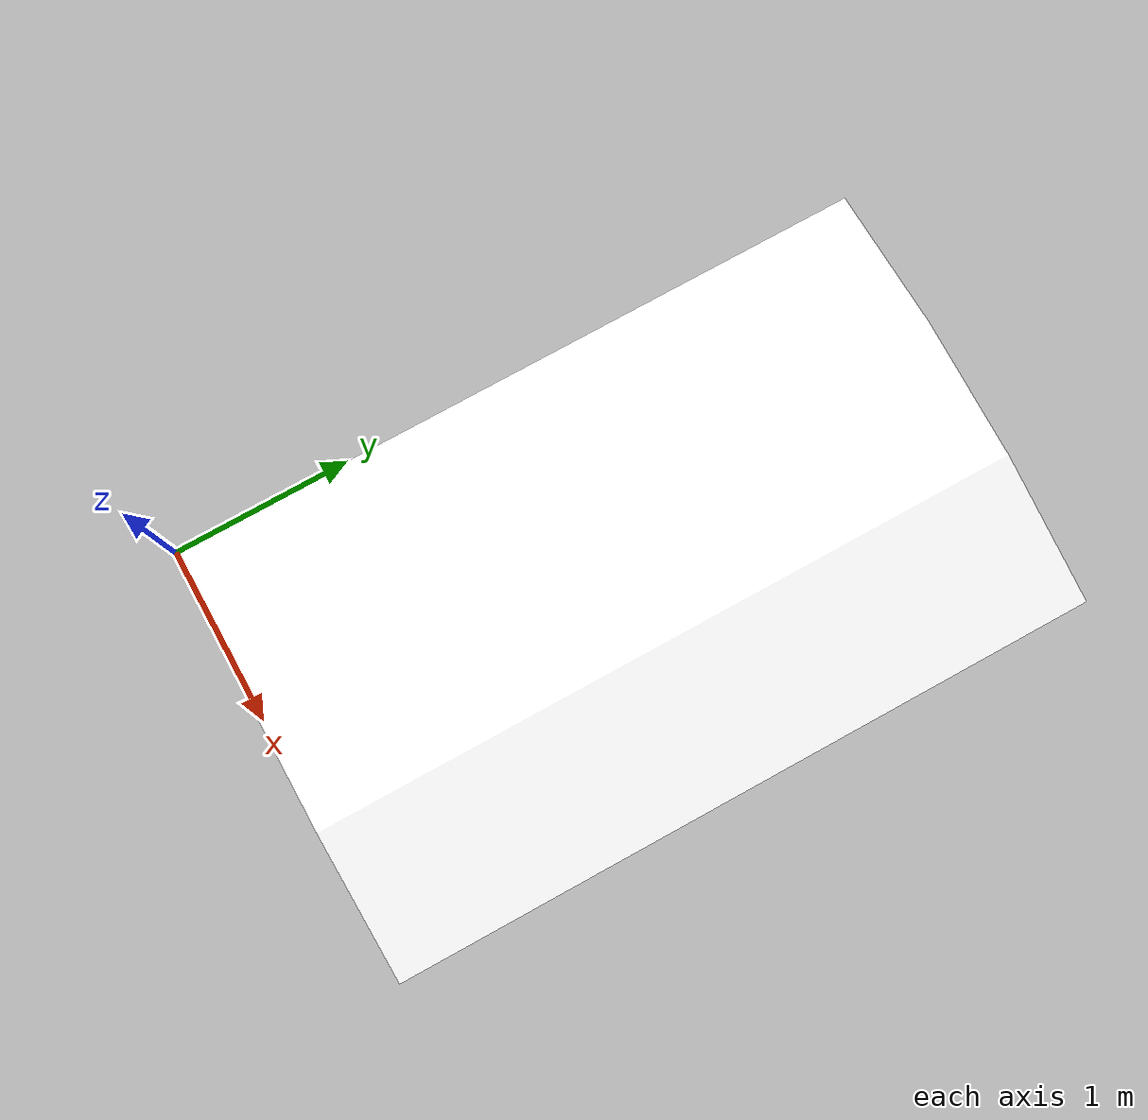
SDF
<?xml version="1.0" ?>
<sdf version="1.6">
  <model name="ramp_1">
    <static>true</static>
    <link name="link">
      <collision name="collision">
        <geometry>
          <mesh>
            <uri>model://ramp_1//ramp_015.dae</uri>
          </mesh>
        </geometry>
        <surface>
          <friction>
            <ode>
              <mu>0.9</mu>
              <mu2>0.6</mu2>
            </ode>
          </friction>
        </surface>
      </collision>
      <visual name="visual">
        <geometry>
          <mesh>
            <uri>model://ramp_1//ramp_015.dae</uri>
          </mesh>
        </geometry>
      </visual>
    </link>
  </model>
</sdf>
